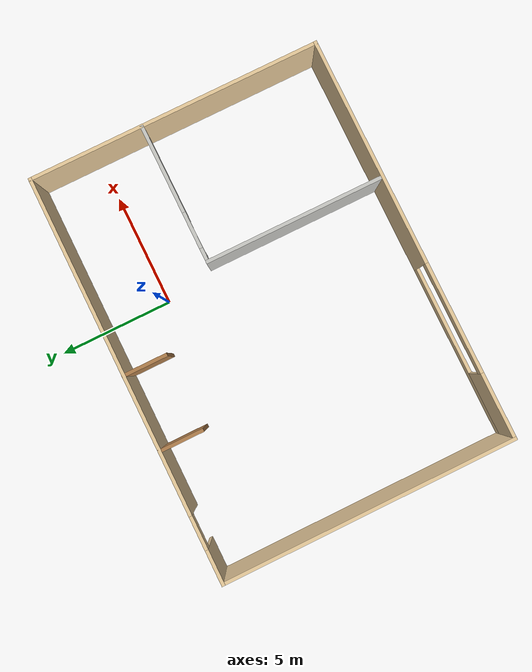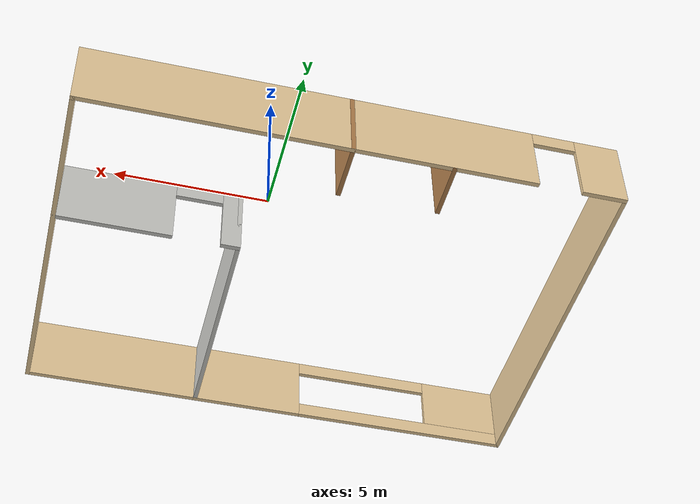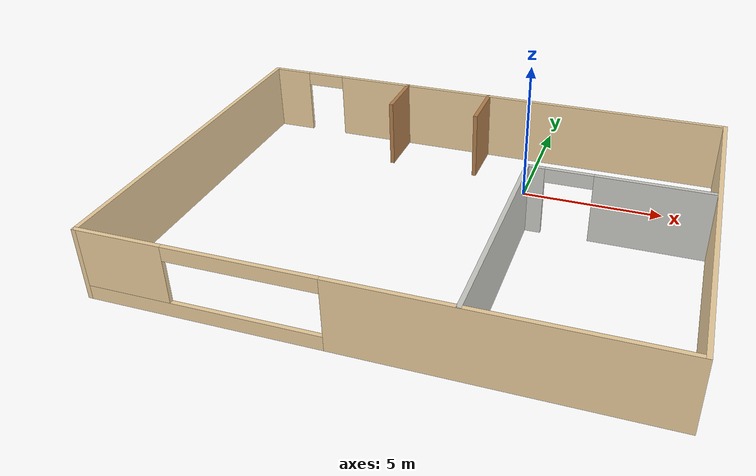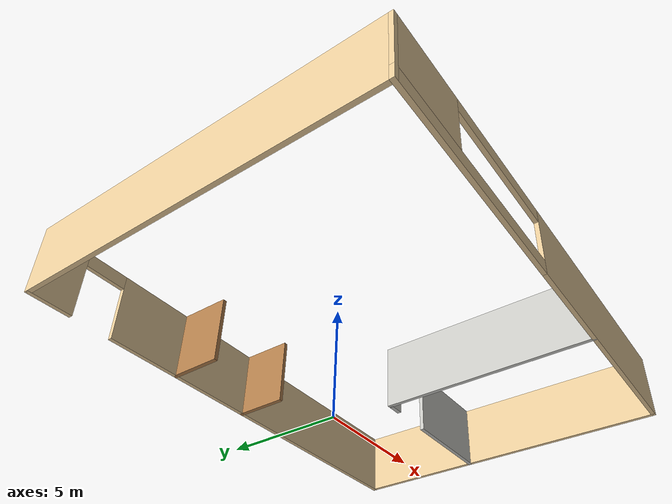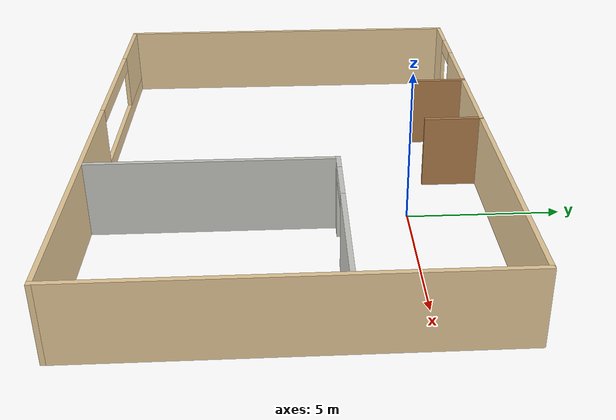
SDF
<?xml version='1.0'?>
<sdf version='1.6'>
  <model name='myapartment'>
    <pose frame=''>-2.26676 -3.72903 0 0 -0 0</pose>
    <link name='Wall_13'>
      <collision name='Wall_13_Collision'>
        <geometry>
          <box>
            <size>8 0.15 2.5</size>
          </box>
        </geometry>
        <pose frame=''>0 0 1.25 0 -0 0</pose>
      </collision>
      <visual name='Wall_13_Visual'>
        <pose frame=''>0 0 1.25 0 -0 0</pose>
        <geometry>
          <box>
            <size>8 0.15 2.5</size>
          </box>
        </geometry>
        <material>
          <script>
            <uri>file://media/materials/scripts/gazebo.material</uri>
            <name>Gazebo/CeilingTiled</name>
          </script>
          <ambient>0 0.666667 1 1</ambient>
        </material>
        <meta>
          <layer>0</layer>
        </meta>
      </visual>
      <pose frame=''>2.77622 -2.48679 0 0 -0 1.5708</pose>
    </link>
    <link name='Wall_14'>
      <pose frame=''>5.82622 1.43821 0 0 -0 0</pose>
      <visual name='Wall_14_Visual_0'>
        <pose frame=''>-2.78661 0 1.25 0 -0 0</pose>
        <geometry>
          <box>
            <size>0.676771 0.15 2.5</size>
          </box>
        </geometry>
        <material>
          <script>
            <uri>file://media/materials/scripts/gazebo.material</uri>
            <name>Gazebo/CeilingTiled</name>
          </script>
          <ambient>0 0.666667 1 1</ambient>
        </material>
        <meta>
          <layer>0</layer>
        </meta>
      </visual>
      <collision name='Wall_14_Collision_0'>
        <geometry>
          <box>
            <size>0.676771 0.15 2.5</size>
          </box>
        </geometry>
        <pose frame=''>-2.78661 0 1.25 0 -0 0</pose>
      </collision>
      <visual name='Wall_14_Visual_1'>
        <pose frame=''>1.14693 0 1.25 0 -0 0</pose>
        <geometry>
          <box>
            <size>3.95614 0.15 2.5</size>
          </box>
        </geometry>
        <material>
          <script>
            <uri>file://media/materials/scripts/gazebo.material</uri>
            <name>Gazebo/CeilingTiled</name>
          </script>
          <ambient>0 0.666667 1 1</ambient>
        </material>
        <meta>
          <layer>0</layer>
        </meta>
      </visual>
      <collision name='Wall_14_Collision_1'>
        <geometry>
          <box>
            <size>3.95614 0.15 2.5</size>
          </box>
        </geometry>
        <pose frame=''>1.14693 0 1.25 0 -0 0</pose>
      </collision>
      <visual name='Wall_14_Visual_2'>
        <pose frame=''>-1.63968 0 2.25 0 -0 0</pose>
        <geometry>
          <box>
            <size>1.61709 0.15 0.5</size>
          </box>
        </geometry>
        <material>
          <script>
            <uri>file://media/materials/scripts/gazebo.material</uri>
            <name>Gazebo/CeilingTiled</name>
          </script>
          <ambient>0 0.666667 1 1</ambient>
        </material>
        <meta>
          <layer>0</layer>
        </meta>
      </visual>
      <collision name='Wall_14_Collision_2'>
        <geometry>
          <box>
            <size>1.61709 0.15 0.5</size>
          </box>
        </geometry>
        <pose frame=''>-1.63968 0 2.25 0 -0 0</pose>
      </collision>
    </link>
    <link name='Wall_2'>
      <pose frame=''>0 6.42373 0 0 -0 0</pose>
      <visual name='Wall_2_Visual_0'>
        <pose frame=''>-8.23049 0 1.25 0 -0 0</pose>
        <geometry>
          <box>
            <size>1.53902 0.15 2.5</size>
          </box>
        </geometry>
        <material>
          <script>
            <uri>file://media/materials/scripts/gazebo.material</uri>
            <name>Gazebo/Grey</name>
          </script>
          <ambient>0.921569 0.807843 0.615686 1</ambient>
        </material>
        <meta>
          <layer>0</layer>
        </meta>
      </visual>
      <collision name='Wall_2_Collision_0'>
        <geometry>
          <box>
            <size>1.53902 0.15 2.5</size>
          </box>
        </geometry>
        <pose frame=''>-8.23049 0 1.25 0 -0 0</pose>
      </collision>
      <visual name='Wall_2_Visual_1'>
        <pose frame=''>1.49935 0 1.25 0 -0 0</pose>
        <geometry>
          <box>
            <size>15.0013 0.15 2.5</size>
          </box>
        </geometry>
        <material>
          <script>
            <uri>file://media/materials/scripts/gazebo.material</uri>
            <name>Gazebo/Grey</name>
          </script>
          <ambient>0.921569 0.807843 0.615686 1</ambient>
        </material>
        <meta>
          <layer>0</layer>
        </meta>
      </visual>
      <collision name='Wall_2_Collision_1'>
        <geometry>
          <box>
            <size>15.0013 0.15 2.5</size>
          </box>
        </geometry>
        <pose frame=''>1.49935 0 1.25 0 -0 0</pose>
      </collision>
      <visual name='Wall_2_Visual_2'>
        <pose frame=''>-6.73114 0 2.25 0 -0 0</pose>
        <geometry>
          <box>
            <size>1.45968 0.15 0.5</size>
          </box>
        </geometry>
        <material>
          <script>
            <uri>file://media/materials/scripts/gazebo.material</uri>
            <name>Gazebo/Grey</name>
          </script>
          <ambient>0.921569 0.807843 0.615686 1</ambient>
        </material>
        <meta>
          <layer>0</layer>
        </meta>
      </visual>
      <collision name='Wall_2_Collision_2'>
        <geometry>
          <box>
            <size>1.45968 0.15 0.5</size>
          </box>
        </geometry>
        <pose frame=''>-6.73114 0 2.25 0 -0 0</pose>
      </collision>
    </link>
    <link name='Wall_20'>
      <collision name='Wall_20_Collision'>
        <geometry>
          <box>
            <size>2 0.15 2.5</size>
          </box>
        </geometry>
        <pose frame=''>0 0 1.25 0 -0 0</pose>
      </collision>
      <visual name='Wall_20_Visual'>
        <pose frame=''>0 0 1.25 0 -0 0</pose>
        <geometry>
          <box>
            <size>2 0.15 2.5</size>
          </box>
        </geometry>
        <material>
          <script>
            <uri>file://media/materials/scripts/gazebo.material</uri>
            <name>Gazebo/Wood</name>
          </script>
          <ambient>0 0.666667 1 1</ambient>
        </material>
        <meta>
          <layer>0</layer>
        </meta>
      </visual>
      <pose frame=''>0.133709 5.50127 0 0 -0 -1.5708</pose>
    </link>
    <link name='Wall_22'>
      <collision name='Wall_22_Collision'>
        <geometry>
          <box>
            <size>2 0.15 2.5</size>
          </box>
        </geometry>
        <pose frame=''>0 0 1.25 0 -0 0</pose>
      </collision>
      <visual name='Wall_22_Visual'>
        <pose frame=''>0 0 1.25 0 -0 0</pose>
        <geometry>
          <box>
            <size>2 0.15 2.5</size>
          </box>
        </geometry>
        <material>
          <script>
            <uri>file://media/materials/scripts/gazebo.material</uri>
            <name>Gazebo/Wood</name>
          </script>
          <ambient>0 0.666667 1 1</ambient>
        </material>
        <meta>
          <layer>0</layer>
        </meta>
      </visual>
      <pose frame=''>-3.1894 5.49654 0 0 -0 -1.5708</pose>
    </link>
    <link name='Wall_6'>
      <collision name='Wall_6_Collision'>
        <geometry>
          <box>
            <size>13 0.15 2.5</size>
          </box>
        </geometry>
        <pose frame=''>0 0 1.25 0 -0 0</pose>
      </collision>
      <visual name='Wall_6_Visual'>
        <pose frame=''>0 0 1.25 0 -0 0</pose>
        <geometry>
          <box>
            <size>13 0.15 2.5</size>
          </box>
        </geometry>
        <material>
          <script>
            <uri>file://media/materials/scripts/gazebo.material</uri>
            <name>Gazebo/Grey</name>
          </script>
          <ambient>0.921569 0.807843 0.615686 1</ambient>
        </material>
        <meta>
          <layer>0</layer>
        </meta>
      </visual>
      <pose frame=''>8.925 -0.001273 0 0 -0 -1.5708</pose>
    </link>
    <link name='Wall_7'>
      <pose frame=''>0 -6.42627 0 0 -0 3.14159</pose>
      <visual name='Wall_7_Visual_0'>
        <pose frame=''>-3.92872 0 1.25 0 -0 0</pose>
        <geometry>
          <box>
            <size>10.1426 0.15 2.5</size>
          </box>
        </geometry>
        <material>
          <script>
            <uri>file://media/materials/scripts/gazebo.material</uri>
            <name>Gazebo/Grey</name>
          </script>
          <ambient>0.921569 0.807843 0.615686 1</ambient>
        </material>
        <meta>
          <layer>0</layer>
        </meta>
      </visual>
      <collision name='Wall_7_Collision_0'>
        <geometry>
          <box>
            <size>10.1426 0.15 2.5</size>
          </box>
        </geometry>
        <pose frame=''>-3.92872 0 1.25 0 -0 0</pose>
      </collision>
      <visual name='Wall_7_Visual_1'>
        <pose frame=''>5.07128 0 0.25 0 -0 0</pose>
        <geometry>
          <box>
            <size>7.85743 0.15 0.5</size>
          </box>
        </geometry>
        <material>
          <script>
            <uri>file://media/materials/scripts/gazebo.material</uri>
            <name>Gazebo/Grey</name>
          </script>
          <ambient>0.921569 0.807843 0.615686 1</ambient>
        </material>
        <meta>
          <layer>0</layer>
        </meta>
      </visual>
      <collision name='Wall_7_Collision_1'>
        <geometry>
          <box>
            <size>7.85743 0.15 0.5</size>
          </box>
        </geometry>
        <pose frame=''>5.07128 0 0.25 0 -0 0</pose>
      </collision>
      <visual name='Wall_7_Visual_2'>
        <pose frame=''>7.51928 0 1.5 0 -0 0</pose>
        <geometry>
          <box>
            <size>2.96143 0.15 2</size>
          </box>
        </geometry>
        <material>
          <script>
            <uri>file://media/materials/scripts/gazebo.material</uri>
            <name>Gazebo/Grey</name>
          </script>
          <ambient>0.921569 0.807843 0.615686 1</ambient>
        </material>
        <meta>
          <layer>0</layer>
        </meta>
      </visual>
      <collision name='Wall_7_Collision_2'>
        <geometry>
          <box>
            <size>2.96143 0.15 2</size>
          </box>
        </geometry>
        <pose frame=''>7.51928 0 1.5 0 -0 0</pose>
      </collision>
      <visual name='Wall_7_Visual_3'>
        <pose frame=''>3.59057 0 2.2555 0 -0 0</pose>
        <geometry>
          <box>
            <size>4.896 0.15 0.489</size>
          </box>
        </geometry>
        <material>
          <script>
            <uri>file://media/materials/scripts/gazebo.material</uri>
            <name>Gazebo/Grey</name>
          </script>
          <ambient>0.921569 0.807843 0.615686 1</ambient>
        </material>
        <meta>
          <layer>0</layer>
        </meta>
      </visual>
      <collision name='Wall_7_Collision_3'>
        <geometry>
          <box>
            <size>4.896 0.15 0.489</size>
          </box>
        </geometry>
        <pose frame=''>3.59057 0 2.2555 0 -0 0</pose>
      </collision>
    </link>
    <link name='Wall_8'>
      <collision name='Wall_8_Collision'>
        <geometry>
          <box>
            <size>13 0.15 2.5</size>
          </box>
        </geometry>
        <pose frame=''>0 0 1.25 0 -0 0</pose>
      </collision>
      <visual name='Wall_8_Visual'>
        <pose frame=''>0 0 1.25 0 -0 0</pose>
        <geometry>
          <box>
            <size>13 0.15 2.5</size>
          </box>
        </geometry>
        <material>
          <script>
            <uri>file://media/materials/scripts/gazebo.material</uri>
            <name>Gazebo/Grey</name>
          </script>
          <ambient>0.921569 0.807843 0.615686 1</ambient>
        </material>
        <meta>
          <layer>0</layer>
        </meta>
      </visual>
      <pose frame=''>-8.925 -0.001273 0 0 -0 1.5708</pose>
    </link>
    <static>1</static>
  </model>
</sdf>
